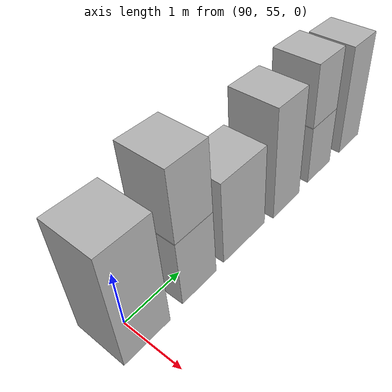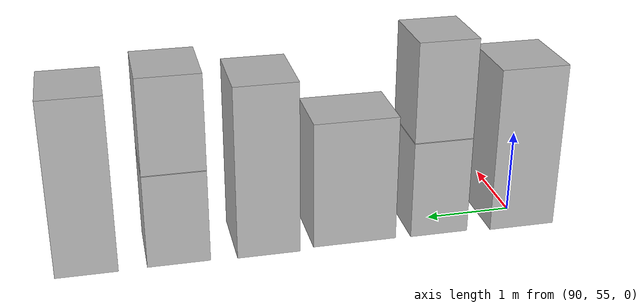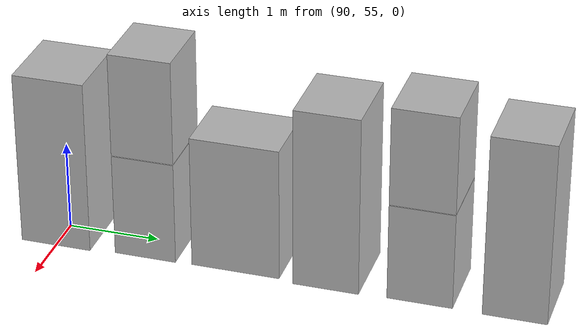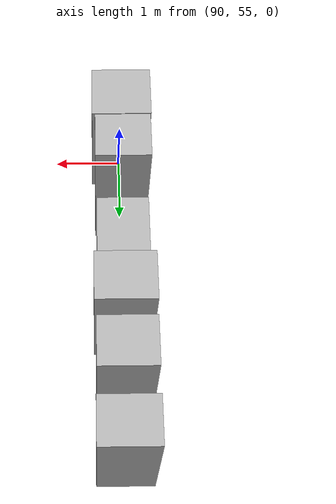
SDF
<sdf version="1.5">
 <world name="default">
  <model name="ground_plane">
   <static>true</static>
   <link name="link">
    <collision name="collision">
     <geometry><plane><normal>0 0 1</normal><size>250 250</size></plane></geometry>
     <surface><friction><ode><mu>1</mu><mu2>1</mu2></ode></friction></surface>
    </collision>
    <visual name="grass">
     <cast_shadows>false</cast_shadows>
     <geometry><mesh><uri>file://grass_plane/meshes/grass_plane.dae</uri></mesh></geometry>
    </visual>
   </link>
  </model>
  <model name="Cardboard_box_705">
   <link name="link_0">
    <pose>90 55 0 0 0 0</pose>
    <inertial>
     <mass>1</mass>
     <inertia>
      <ixx>0.166667</ixx>
      <ixy>0</ixy>
      <ixz>0</ixz>
      <iyy>0.166667</iyy>
      <iyz>0</iyz>
      <izz>0.166667</izz>
     </inertia>
    </inertial>
    <collision name="collision">
     <geometry>
      <mesh>
       <uri>model://Cardboard_box/meshes/cardboard_box.dae</uri>
       <scale>2.1724963996 1.9655396877 4.98870610135</scale>
      </mesh>
     </geometry>
    </collision>
    <visual name="visual">
     <geometry>
      <mesh>
       <uri>model://Cardboard_box/meshes/cardboard_box.dae</uri>
       <scale>2.1724963996 1.9655396877 4.98870610135</scale>
      </mesh>
     </geometry>
    </visual>
   </link>
   <static>1</static>
  </model>
  <model name="Cardboard_box_706">
   <link name="link_0">
    <pose>90 56 0 0 0 0</pose>
    <inertial>
     <mass>1</mass>
     <inertia>
      <ixx>0.166667</ixx>
      <ixy>0</ixy>
      <ixz>0</ixz>
      <iyy>0.166667</iyy>
      <iyz>0</iyz>
      <izz>0.166667</izz>
     </inertia>
    </inertial>
    <collision name="collision">
     <geometry>
      <mesh>
       <uri>model://Cardboard_box/meshes/cardboard_box.dae</uri>
       <scale>1.96355700018 1.712929311 2.95369520704</scale>
      </mesh>
     </geometry>
    </collision>
    <visual name="visual">
     <geometry>
      <mesh>
       <uri>model://Cardboard_box/meshes/cardboard_box.dae</uri>
       <scale>1.96355700018 1.712929311 2.95369520704</scale>
      </mesh>
     </geometry>
    </visual>
   </link>
   <static>1</static>
  </model>
  <model name="Cardboard_box_top_706">
   <link name="link_0">
    <pose>90 56 1.18147808282 0 0 0</pose>
    <inertial>
     <mass>1</mass>
     <inertia>
      <ixx>0.166667</ixx>
      <ixy>0</ixy>
      <ixz>0</ixz>
      <iyy>0.166667</iyy>
      <iyz>0</iyz>
      <izz>0.166667</izz>
     </inertia>
    </inertial>
    <collision name="collision">
     <geometry>
      <mesh>
       <uri>model://Cardboard_box/meshes/cardboard_box.dae</uri>
       <scale>1.96355700018 1.712929311 2.95369520704</scale>
      </mesh>
     </geometry>
    </collision>
    <visual name="visual">
     <geometry>
      <mesh>
       <uri>model://Cardboard_box/meshes/cardboard_box.dae</uri>
       <scale>1.96355700018 1.712929311 2.95369520704</scale>
      </mesh>
     </geometry>
    </visual>
   </link>
   <static>1</static>
  </model>
  <model name="Cardboard_box_707">
   <link name="link_0">
    <pose>90 57 0 0 0 0</pose>
    <inertial>
     <mass>1</mass>
     <inertia>
      <ixx>0.166667</ixx>
      <ixy>0</ixy>
      <ixz>0</ixz>
      <iyy>0.166667</iyy>
      <iyz>0</iyz>
      <izz>0.166667</izz>
     </inertia>
    </inertial>
    <collision name="collision">
     <geometry>
      <mesh>
       <uri>model://Cardboard_box/meshes/cardboard_box.dae</uri>
       <scale>1.89605005167 2.42979016929 3.81124027483</scale>
      </mesh>
     </geometry>
    </collision>
    <visual name="visual">
     <geometry>
      <mesh>
       <uri>model://Cardboard_box/meshes/cardboard_box.dae</uri>
       <scale>1.89605005167 2.42979016929 3.81124027483</scale>
      </mesh>
     </geometry>
    </visual>
   </link>
   <static>1</static>
  </model>
  <model name="Cardboard_box_708">
   <link name="link_0">
    <pose>90 58 0 0 0 0</pose>
    <inertial>
     <mass>1</mass>
     <inertia>
      <ixx>0.166667</ixx>
      <ixy>0</ixy>
      <ixz>0</ixz>
      <iyy>0.166667</iyy>
      <iyz>0</iyz>
      <izz>0.166667</izz>
     </inertia>
    </inertial>
    <collision name="collision">
     <geometry>
      <mesh>
       <uri>model://Cardboard_box/meshes/cardboard_box.dae</uri>
       <scale>2.15151421404 1.79101508353 5.14381106043</scale>
      </mesh>
     </geometry>
    </collision>
    <visual name="visual">
     <geometry>
      <mesh>
       <uri>model://Cardboard_box/meshes/cardboard_box.dae</uri>
       <scale>2.15151421404 1.79101508353 5.14381106043</scale>
      </mesh>
     </geometry>
    </visual>
   </link>
   <static>1</static>
  </model>
  <model name="Cardboard_box_709">
   <link name="link_0">
    <pose>90 59 0 0 0 0</pose>
    <inertial>
     <mass>1</mass>
     <inertia>
      <ixx>0.166667</ixx>
      <ixy>0</ixy>
      <ixz>0</ixz>
      <iyy>0.166667</iyy>
      <iyz>0</iyz>
      <izz>0.166667</izz>
     </inertia>
    </inertial>
    <collision name="collision">
     <geometry>
      <mesh>
       <uri>model://Cardboard_box/meshes/cardboard_box.dae</uri>
       <scale>2.03114022685 1.75314819155 2.77794756805</scale>
      </mesh>
     </geometry>
    </collision>
    <visual name="visual">
     <geometry>
      <mesh>
       <uri>model://Cardboard_box/meshes/cardboard_box.dae</uri>
       <scale>2.03114022685 1.75314819155 2.77794756805</scale>
      </mesh>
     </geometry>
    </visual>
   </link>
   <static>1</static>
  </model>
  <model name="Cardboard_box_top_709">
   <link name="link_0">
    <pose>90 59 1.11117902722 0 0 0</pose>
    <inertial>
     <mass>1</mass>
     <inertia>
      <ixx>0.166667</ixx>
      <ixy>0</ixy>
      <ixz>0</ixz>
      <iyy>0.166667</iyy>
      <iyz>0</iyz>
      <izz>0.166667</izz>
     </inertia>
    </inertial>
    <collision name="collision">
     <geometry>
      <mesh>
       <uri>model://Cardboard_box/meshes/cardboard_box.dae</uri>
       <scale>2.03114022685 1.75314819155 2.77794756805</scale>
      </mesh>
     </geometry>
    </collision>
    <visual name="visual">
     <geometry>
      <mesh>
       <uri>model://Cardboard_box/meshes/cardboard_box.dae</uri>
       <scale>2.03114022685 1.75314819155 2.77794756805</scale>
      </mesh>
     </geometry>
    </visual>
   </link>
   <static>1</static>
  </model>
  <model name="Cardboard_box_710">
   <link name="link_0">
    <pose>90 60 0 0 0 0</pose>
    <inertial>
     <mass>1</mass>
     <inertia>
      <ixx>0.166667</ixx>
      <ixy>0</ixy>
      <ixz>0</ixz>
      <iyy>0.166667</iyy>
      <iyz>0</iyz>
      <izz>0.166667</izz>
     </inertia>
    </inertial>
    <collision name="collision">
     <geometry>
      <mesh>
       <uri>model://Cardboard_box/meshes/cardboard_box.dae</uri>
       <scale>2.09399298753 1.71141226106 5.19626902055</scale>
      </mesh>
     </geometry>
    </collision>
    <visual name="visual">
     <geometry>
      <mesh>
       <uri>model://Cardboard_box/meshes/cardboard_box.dae</uri>
       <scale>2.09399298753 1.71141226106 5.19626902055</scale>
      </mesh>
     </geometry>
    </visual>
   </link>
   <static>1</static>
  </model>
 </world>
</sdf>
